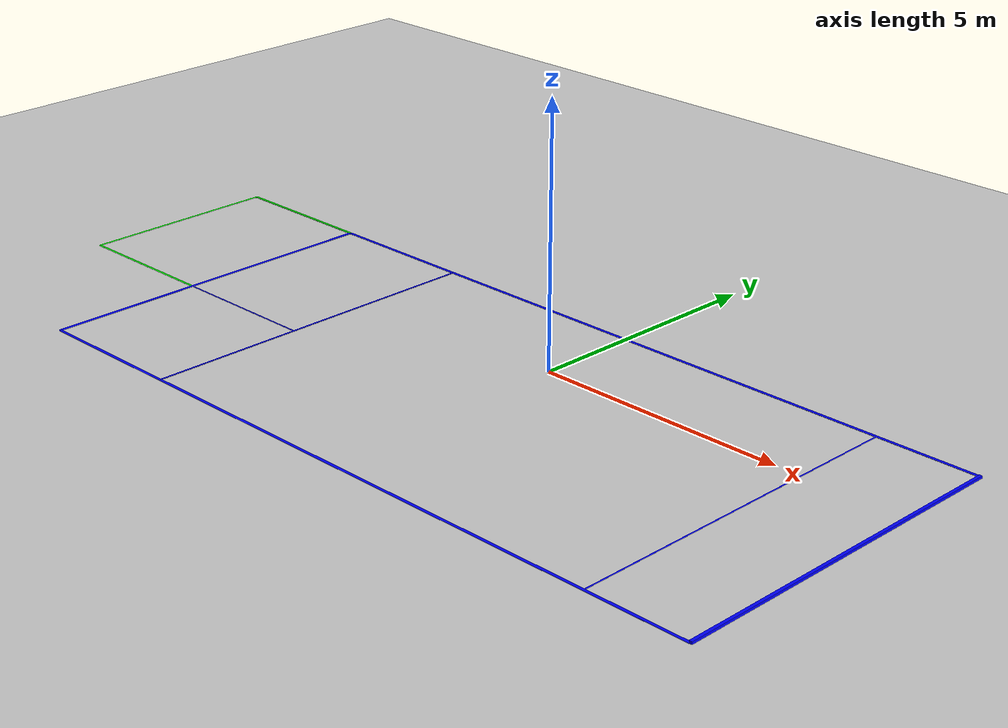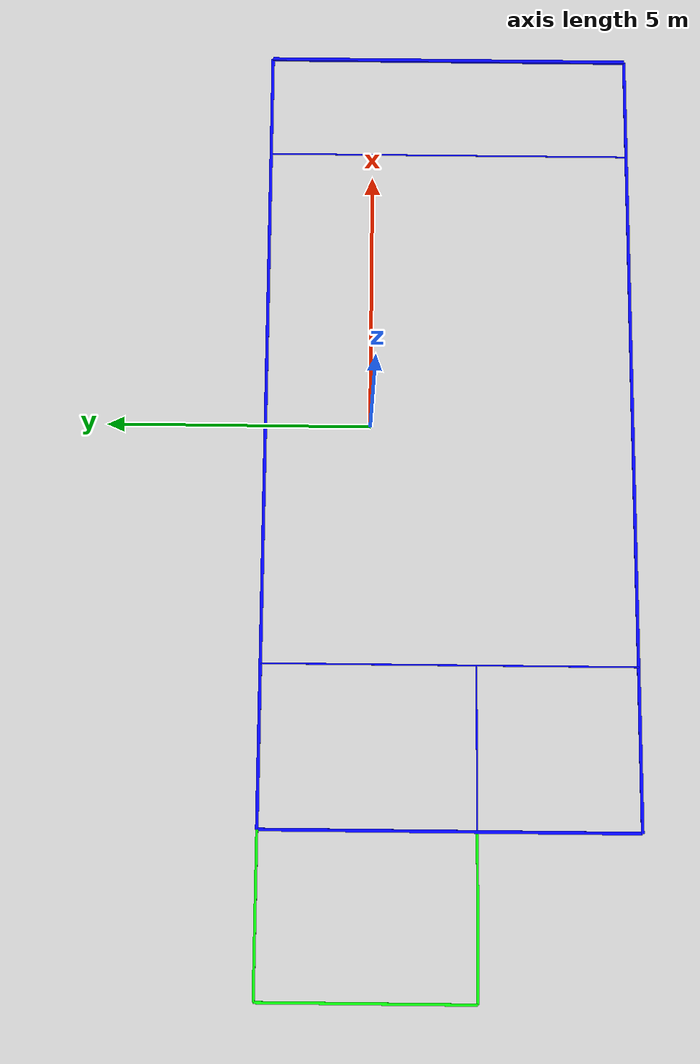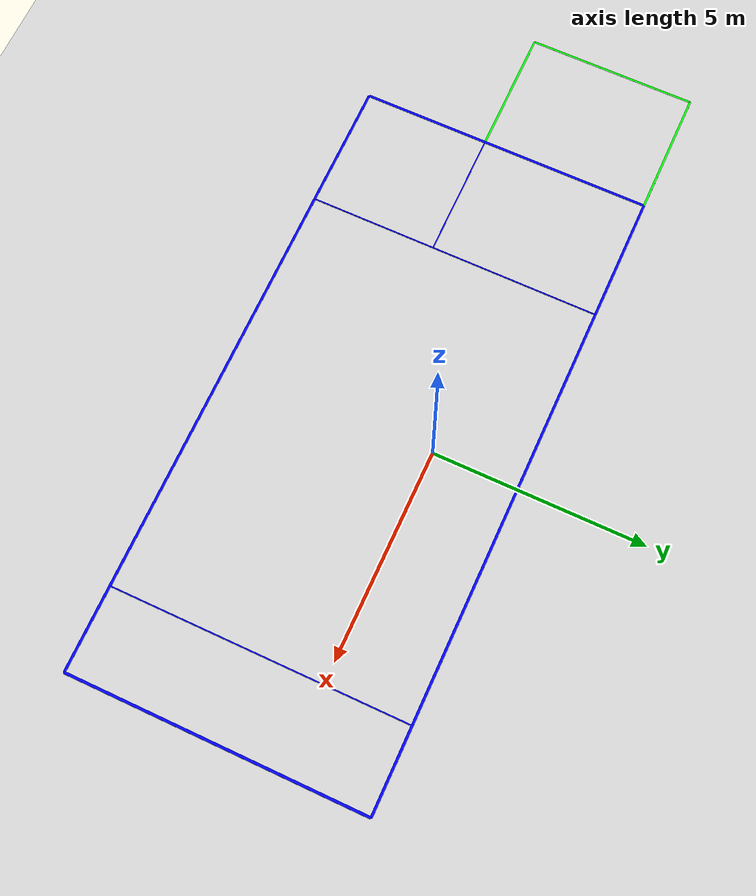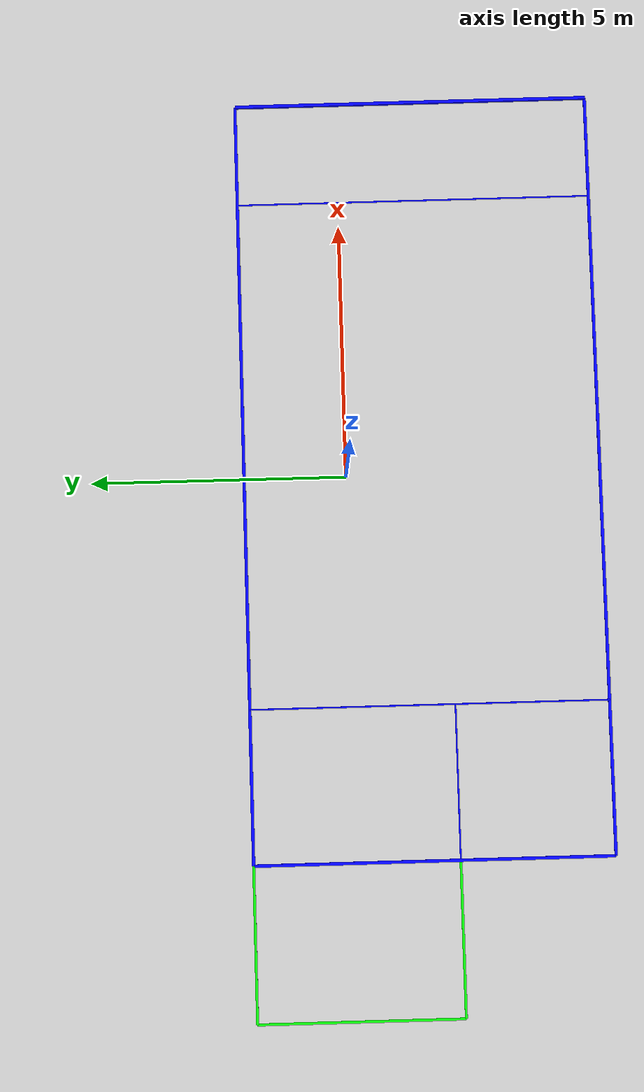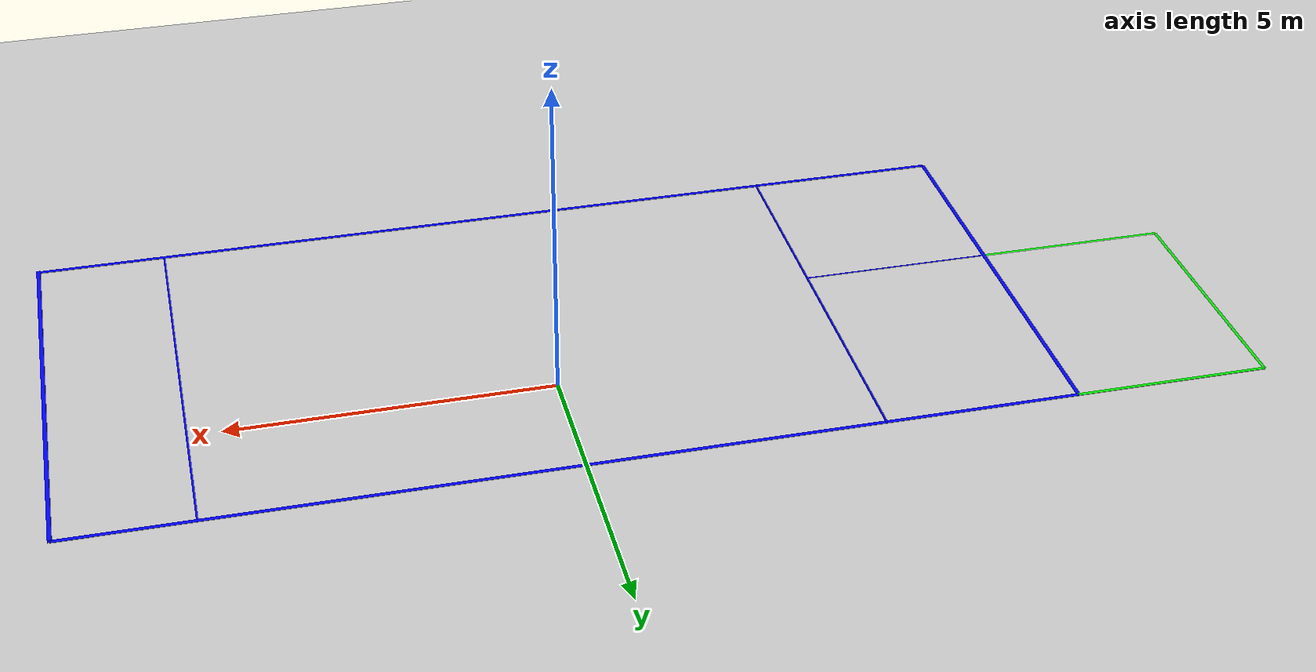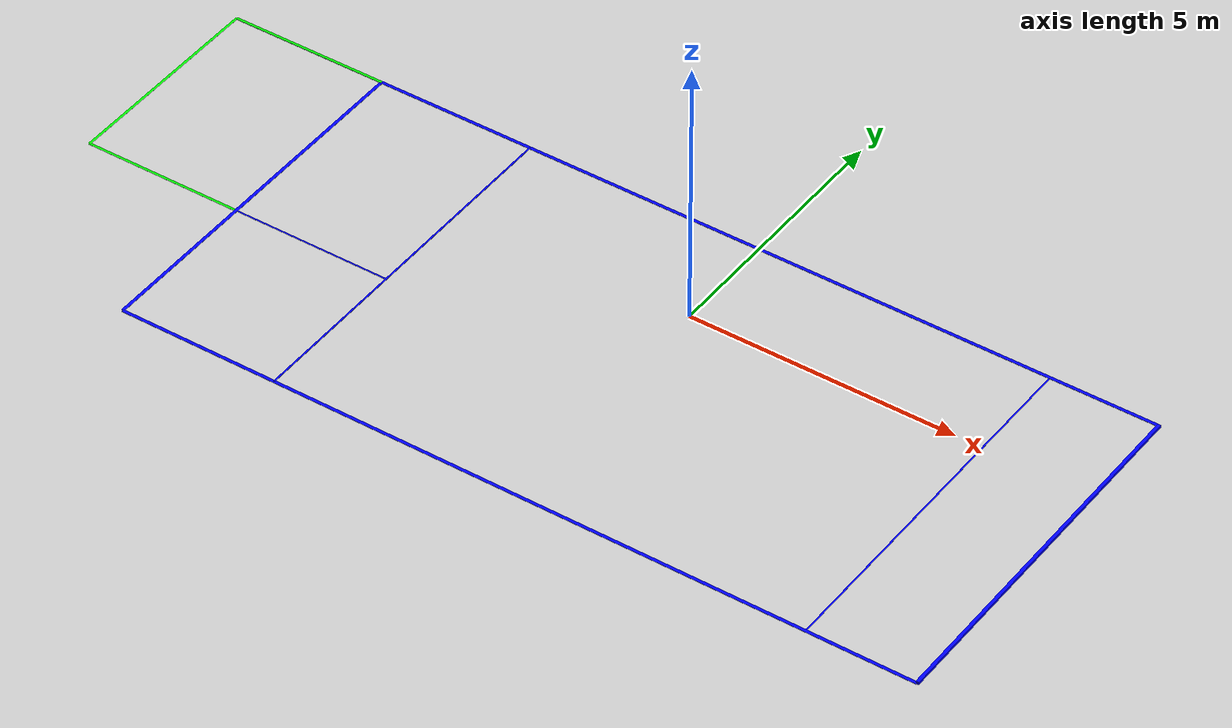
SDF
<sdf version="1.6">
 <world name="default">
  <light name="sun" type="directional">
   <pose>0 0 10 0 -0 0</pose>
   <diffuse>0.8 0.8 0.8 1</diffuse>
   <specular>0.2 0.2 0.2 1</specular>
   <attenuation>
    <range>1000</range>
    <constant>0.9</constant>
    <linear>0.01</linear>
    <quadratic>0.001</quadratic>
   </attenuation>
   <direction>-0.5 0.1 -0.9</direction>
  </light>
  <include><uri>model://ground_plane</uri></include>
  <include><uri>model://sun</uri></include>
  <model name="env_1_limit">
   <link name="Wall_0">
    <collision name="Wall_0_Collision">
     <geometry><box><size>15 0.06 0.006</size></box></geometry>
     <pose>0 -5 0 0 -0 0</pose>
    </collision>
    <visual name="Wall_0_Visual">
     <pose>0 -5 0 0 -0 0</pose>
     <geometry><box><size>15 0.06 0.006</size></box></geometry>
     <material>
      <script><uri>file://media/materials/scripts/gazebo.material</uri><name>Gazebo/Grey</name></script>
      <diffuse>0 0 1 1</diffuse>
     </material>
     <meta><layer>0</layer></meta>
    </visual>
   </link>
   <link name="Wall_1">
    <collision name="Wall_1_Collision">
     <geometry><box><size>15 0.06 0.006</size></box></geometry>
     <pose>0 2 0 0 -0 0</pose>
    </collision>
    <visual name="Wall_1_Visual">
     <pose>0 2 0 0 -0 0</pose>
     <geometry><box><size>15 0.06 0.006</size></box></geometry>
     <material>
      <script><uri>file://media/materials/scripts/gazebo.material</uri><name>Gazebo/Grey</name></script>
      <diffuse>0 0 1 1</diffuse>
     </material>
     <meta><layer>0</layer></meta>
    </visual>
   </link>
   <link name="Wall_2">
    <collision name="Wall_2_Collision">
     <geometry><box><size>0.06 7 0.06</size></box></geometry>
     <pose>7.5 -1.5 0 0 0 0</pose>
    </collision>
    <visual name="Wall_2_Visual">
     <pose>7.5 -1.5 0 0 0 0</pose>
     <geometry><box><size>0.06 7 0.06</size></box></geometry>
     <material>
      <script><uri>file://media/materials/scripts/gazebo.material</uri><name>Gazebo/Grey</name></script>
      <diffuse>0 0 1 1</diffuse>
     </material>
     <meta><layer>0</layer></meta>
    </visual>
   </link>
   <link name="Wall_3">
    <collision name="Wall_3_Collision">
     <geometry><box><size>0.06 7 0.006</size></box></geometry>
     <pose>-7.5 -1.5 0 0 0 0</pose>
    </collision>
    <visual name="Wall_3_Visual">
     <pose>-7.5 -1.5 0 0 0 0</pose>
     <geometry><box><size>0.06 7 0.006</size></box></geometry>
     <material>
      <script><uri>file://media/materials/scripts/gazebo.material</uri><name>Gazebo/Grey</name></script>
      <diffuse>0 0 1 1</diffuse>
     </material>
     <meta><layer>0</layer></meta>
    </visual>
   </link>
   <link name="Wall_4">
    <collision name="Wall_4_Collision">
     <geometry><box><size>0.03 7 0.001</size></box></geometry>
     <pose>-4.5 -1.5 0 0 0 0</pose>
    </collision>
    <visual name="Wall_4_Visual">
     <pose>-4.5 -1.5 0 0 0 0</pose>
     <geometry><box><size>0.03 7 0.01</size></box></geometry>
     <material>
      <script><uri>file://media/materials/scripts/gazebo.material</uri><name>Gazebo/Grey</name></script>
      <diffuse>0 0,062745098 0,188235294 0.38</diffuse>
     </material>
     <meta><layer>0</layer></meta>
    </visual>
   </link>
   <link name="Wall_5">
    <collision name="Wall_5_Collision">
     <geometry><box><size>0.03 7 0.001</size></box></geometry>
     <pose>5.5 -1.5 0 0 0 0</pose>
    </collision>
    <visual name="Wall_5_Visual">
     <pose>5.5 -1.5 0 0 0 0</pose>
     <geometry><box><size>0.03 7 0.001</size></box></geometry>
     <material>
      <script><uri>file://media/materials/scripts/gazebo.material</uri><name>Gazebo/Grey</name></script>
      <diffuse>0 0,062745098 0,188235294 0.38</diffuse>
     </material>
     <meta><layer>0</layer></meta>
    </visual>
   </link>
   <link name="Wall_6">
    <collision name="Wall_6_Collision">
     <geometry><box><size>0.05 4 0.01</size></box></geometry>
     <pose>-10.5 0 0 0 0 0</pose>
    </collision>
    <visual name="Wall_6_Visual">
     <pose>-10.5 0 0 0 0 0</pose>
     <geometry><box><size>0.05 4 0.001</size></box></geometry>
     <material>
      <script><uri>file://media/materials/scripts/gazebo.material</uri><name>Gazebo/Grey</name></script>
      <diffuse>0.0196078 0.945098 0.027451 1</diffuse>
     </material>
     <meta><layer>0</layer></meta>
    </visual>
   </link>
   <link name="Wall_7">
    <collision name="Wall_7_Collision">
     <geometry><box><size>3 0.05 0.001</size></box></geometry>
     <pose>-9 -2 0 0 0 0</pose>
    </collision>
    <visual name="Wall_7_Visual">
     <pose>-9 -2 0 0 0 0</pose>
     <geometry><box><size>3 0.05 0.001</size></box></geometry>
     <material>
      <script><uri>file://media/materials/scripts/gazebo.material</uri><name>Gazebo/Grey</name></script>
      <diffuse>0.0196078 0.945098 0.027451 1</diffuse>
     </material>
     <meta><layer>0</layer></meta>
    </visual>
   </link>
   <link name="Wall_8">
    <collision name="Wall_8_Collision">
     <geometry><box><size>3 0.05 0.001</size></box></geometry>
     <pose>-9 2 0 0 0 0</pose>
    </collision>
    <visual name="Wall_8_Visual">
     <pose>-9 2 0 0 0 0</pose>
     <geometry><box><size>3 0.05 0.01</size></box></geometry>
     <material>
      <script><uri>file://media/materials/scripts/gazebo.material</uri><name>Gazebo/Grey</name></script>
      <diffuse>0.0196078 0.945098 0.027451 1</diffuse>
     </material>
     <meta><layer>0</layer></meta>
    </visual>
   </link>
   <link name="Wall_9">
    <collision name="Wall_9_Collision">
     <geometry><box><size>3 0.03 0.01</size></box></geometry>
     <pose>-6 -2 0 0 0 0</pose>
    </collision>
    <visual name="Wall_9_Visual">
     <pose>-6 -2 0 0 0 0</pose>
     <geometry><box><size>3 0.03 0.001</size></box></geometry>
     <material>
      <script><uri>file://media/materials/scripts/gazebo.material</uri><name>Gazebo/Grey</name></script>
      <diffuse>0 0,062745098 0,188235294 0.38</diffuse>
     </material>
     <meta><layer>0</layer></meta>
    </visual>
   </link>
   <static>1</static>
  </model>
 </world>
</sdf>
